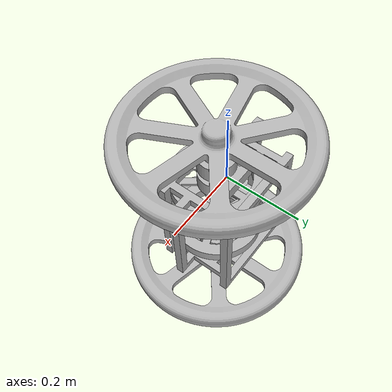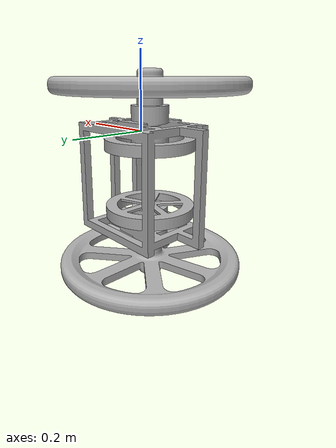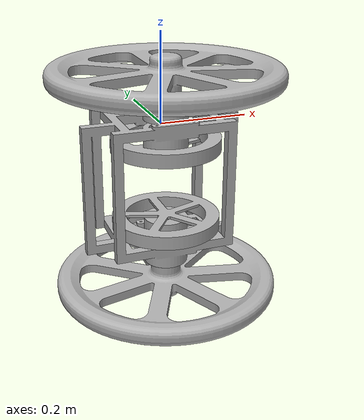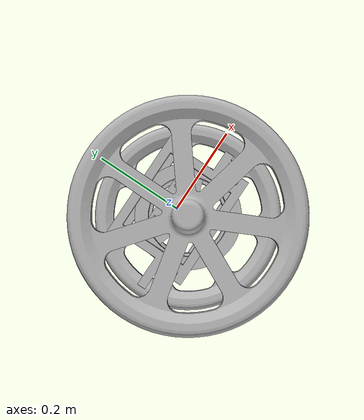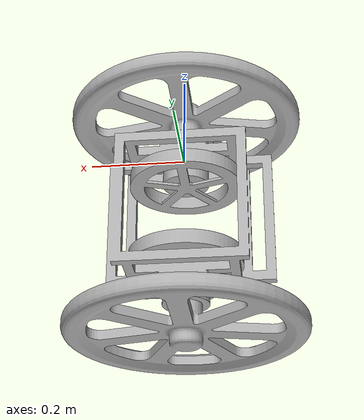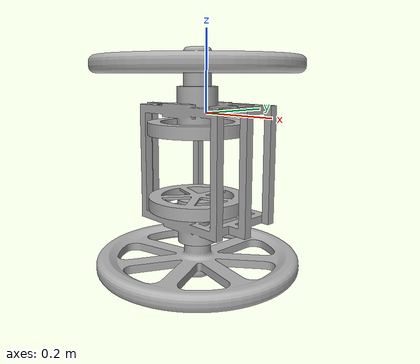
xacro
<?xml version="1.0" ?>
<robot name="URDF_Gyrosse" xmlns:xacro="http://www.ros.org/wiki/xacro">

<xacro:include filename="$(find URDF_Gyrosse_description)/urdf/materials.xacro" />
<xacro:include filename="$(find URDF_Gyrosse_description)/urdf/URDF_Gyrosse.trans" />
<xacro:include filename="$(find URDF_Gyrosse_description)/urdf/URDF_Gyrosse.gazebo" />
<link name="base_link">
  <inertial>
    <origin xyz="-0.0016092705311097533 -0.015999346379359812 -0.125" rpy="0 0 0"/>
    <mass value="23.414335421935156"/>
    <inertia ixx="0.45679" iyy="0.544503" izz="0.235241" ixy="-0.000528" iyz="-0.0" ixz="-0.0"/>
  </inertial>
  <visual>
    <origin xyz="0 0 0" rpy="0 0 0"/>
    <geometry>
      <mesh filename="file://$(find URDF_Gyrosse_description)/meshes/base_link.stl" scale="0.001 0.001 0.001"/>
    </geometry>
    <material name="silver"/>
  </visual>
  <collision>
    <origin xyz="0 0 0" rpy="0 0 0"/>
    <geometry>
      <mesh filename="file://$(find URDF_Gyrosse_description)/meshes/base_link.stl" scale="0.001 0.001 0.001"/>
    </geometry>
  </collision>
</link>

<link name="Wheel1_1">
  <inertial>
    <origin xyz="-1.5551590147418134e-13 1.131351956562554e-13 0.04953341837229644" rpy="0 0 0"/>
    <mass value="29.366879449138207"/>
    <inertia ixx="0.5615" iyy="0.5615" izz="1.114971" ixy="-0.0" iyz="-0.0" ixz="0.0"/>
  </inertial>
  <visual>
    <origin xyz="0.0 0.03 -0.0655" rpy="0 0 0"/>
    <geometry>
      <mesh filename="file://$(find URDF_Gyrosse_description)/meshes/Wheel1_1.stl" scale="0.001 0.001 0.001"/>
    </geometry>
    <material name="silver"/>
  </visual>
  <collision>
    <origin xyz="0.0 0.03 -0.0655" rpy="0 0 0"/>
    <geometry>
      <mesh filename="file://$(find URDF_Gyrosse_description)/meshes/Wheel1_1.stl" scale="0.001 0.001 0.001"/>
    </geometry>
  </collision>
</link>

<link name="FlyWheel1_1">
  <inertial>
    <origin xyz="3.052134490437826e-16 2.42861286636753e-17 0.008066340570656312" rpy="0 0 0"/>
    <mass value="5.05427127683862"/>
    <inertia ixx="0.027196" iyy="0.027196" izz="0.053586" ixy="0.0" iyz="0.0" ixz="0.0"/>
  </inertial>
  <visual>
    <origin xyz="0.0 0.03 0.0425" rpy="0 0 0"/>
    <geometry>
      <mesh filename="file://$(find URDF_Gyrosse_description)/meshes/FlyWheel1_1.stl" scale="0.001 0.001 0.001"/>
    </geometry>
    <material name="silver"/>
  </visual>
  <collision>
    <origin xyz="0.0 0.03 0.0425" rpy="0 0 0"/>
    <geometry>
      <mesh filename="file://$(find URDF_Gyrosse_description)/meshes/FlyWheel1_1.stl" scale="0.001 0.001 0.001"/>
    </geometry>
  </collision>
</link>

<link name="Wheel2_1">
  <inertial>
    <origin xyz="1.6418785088999138e-13 1.131351956562554e-13 -0.04953341837229652" rpy="0 0 0"/>
    <mass value="29.366879449138207"/>
    <inertia ixx="0.5615" iyy="0.5615" izz="1.114971" ixy="0.0" iyz="0.0" ixz="-0.0"/>
  </inertial>
  <visual>
    <origin xyz="0.0 0.03 0.3155" rpy="0 0 0"/>
    <geometry>
      <mesh filename="file://$(find URDF_Gyrosse_description)/meshes/Wheel2_1.stl" scale="0.001 0.001 0.001"/>
    </geometry>
    <material name="silver"/>
  </visual>
  <collision>
    <origin xyz="0.0 0.03 0.3155" rpy="0 0 0"/>
    <geometry>
      <mesh filename="file://$(find URDF_Gyrosse_description)/meshes/Wheel2_1.stl" scale="0.001 0.001 0.001"/>
    </geometry>
  </collision>
</link>

<link name="FlyWheel2_1">
  <inertial>
    <origin xyz="-5.650296961015648e-17 3.8163916471489756e-17 -0.008066340570656277" rpy="0 0 0"/>
    <mass value="5.054271276838622"/>
    <inertia ixx="0.027196" iyy="0.027196" izz="0.053586" ixy="0.0" iyz="0.0" ixz="-0.0"/>
  </inertial>
  <visual>
    <origin xyz="0.0 0.03 0.2075" rpy="0 0 0"/>
    <geometry>
      <mesh filename="file://$(find URDF_Gyrosse_description)/meshes/FlyWheel2_1.stl" scale="0.001 0.001 0.001"/>
    </geometry>
    <material name="silver"/>
  </visual>
  <collision>
    <origin xyz="0.0 0.03 0.2075" rpy="0 0 0"/>
    <geometry>
      <mesh filename="file://$(find URDF_Gyrosse_description)/meshes/FlyWheel2_1.stl" scale="0.001 0.001 0.001"/>
    </geometry>
  </collision>
</link>

<joint name="Wheel1_to_base_link" type="continuous">
  <origin xyz="0.0 -0.03 0.0655" rpy="0 0 0"/>
  <parent link="base_link"/>
  <child link="Wheel1_1"/>
  <axis xyz="0.0 0.0 1.0"/>
</joint>

<joint name="FlyWheel1_to_base_link" type="continuous">
  <origin xyz="0.0 -0.03 -0.0425" rpy="0 0 0"/>
  <parent link="base_link"/>
  <child link="FlyWheel1_1"/>
  <axis xyz="0.0 0.0 -1.0"/>
</joint>

<joint name="Wheel2_to_base_link" type="continuous">
  <origin xyz="0.0 -0.03 -0.3155" rpy="0 0 0"/>
  <parent link="base_link"/>
  <child link="Wheel2_1"/>
  <axis xyz="0.0 0.0 -1.0"/>
</joint>

<joint name="FlyWheel2_to_base_link" type="continuous">
  <origin xyz="0.0 -0.03 -0.2075" rpy="0 0 0"/>
  <parent link="base_link"/>
  <child link="FlyWheel2_1"/>
  <axis xyz="0.0 0.0 1.0"/>
</joint>

</robot>

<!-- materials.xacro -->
<robot name="URDF_Gyrosse" xmlns:xacro="http://www.ros.org/wiki/xacro" >

<material name="silver">
  <color rgba="0.700 0.700 0.700 1.000"/>
</material>

</robot>

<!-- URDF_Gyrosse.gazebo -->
<robot name="URDF_Gyrosse" xmlns:xacro="http://www.ros.org/wiki/xacro" >

<xacro:property name="body_color" value="Gazebo/Silver" />

<gazebo>
  <plugin name="control" filename="libgazebo_ros_control.so"/>
</gazebo>
<gazebo reference="base_link">
  <material>${body_color}</material>
  <mu1>0.2</mu1>
  <mu2>0.2</mu2>
  <self_collide>true</self_collide>
  <gravity>true</gravity>
</gazebo>

<gazebo reference="wheel_right_1">
  <material>${body_color}</material>
  <mu1>0.2</mu1>
  <mu2>0.2</mu2>
  <self_collide>true</self_collide>
</gazebo>

<gazebo reference="flywheel_right_1">
  <material>${body_color}</material>
  <mu1>0.2</mu1>
  <mu2>0.2</mu2>
  <self_collide>true</self_collide>
</gazebo>

<gazebo reference="wheel_left_1">
  <material>${body_color}</material>
  <mu1>0.2</mu1>
  <mu2>0.2</mu2>
  <self_collide>true</self_collide>
</gazebo>

<gazebo reference="flywheel_left_1">
  <material>${body_color}</material>
  <mu1>0.2</mu1>
  <mu2>0.2</mu2>
  <self_collide>true</self_collide>
</gazebo>

</robot>
